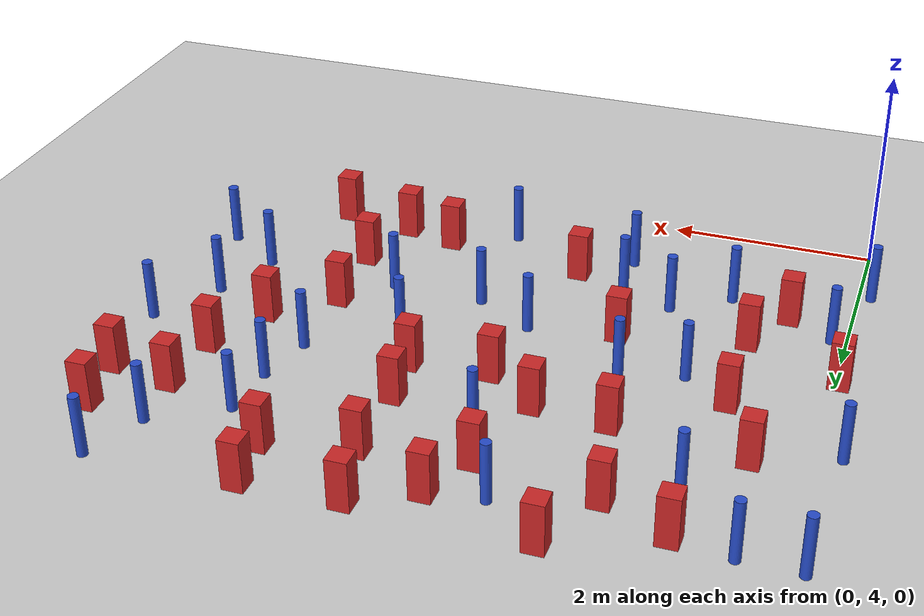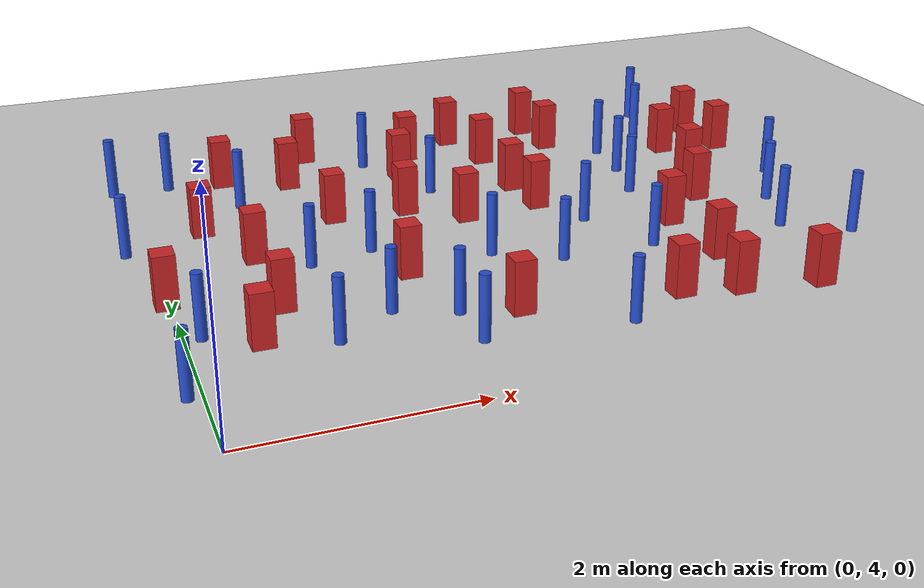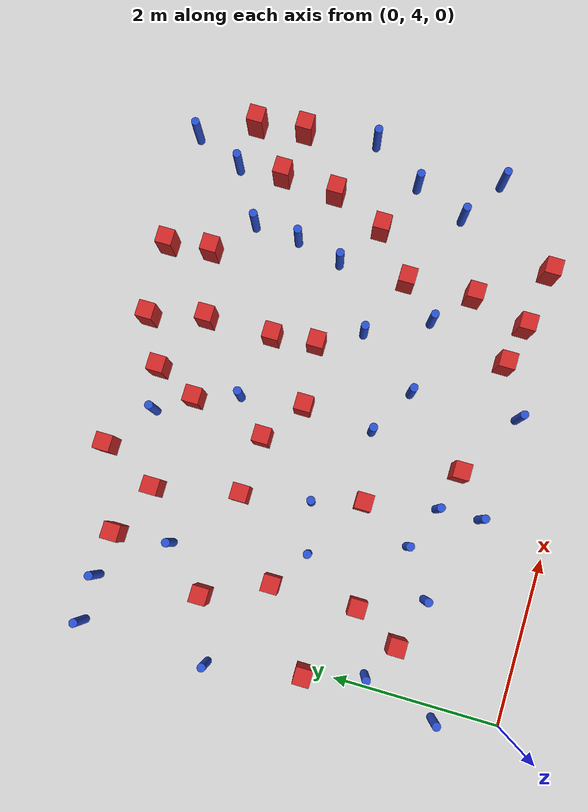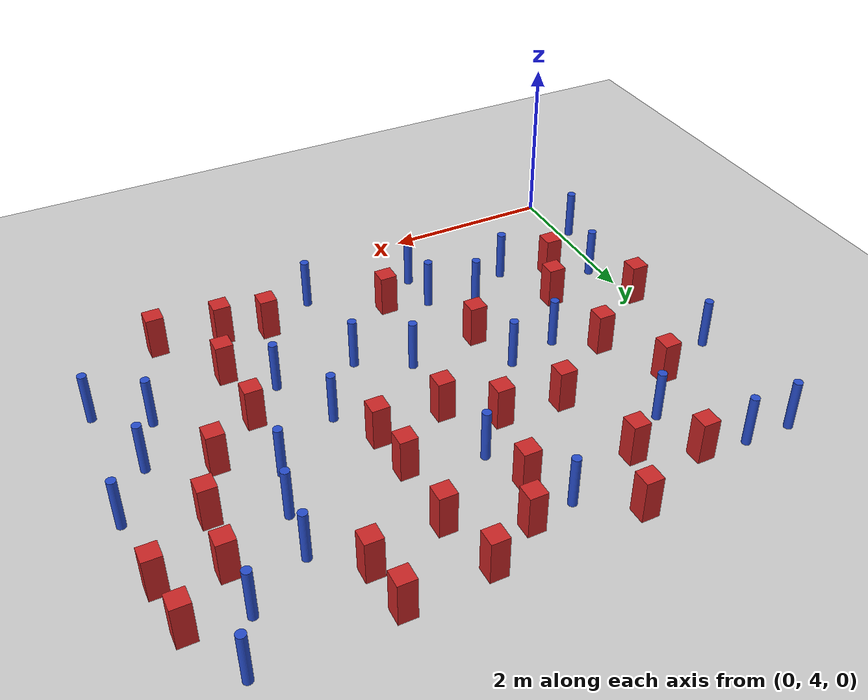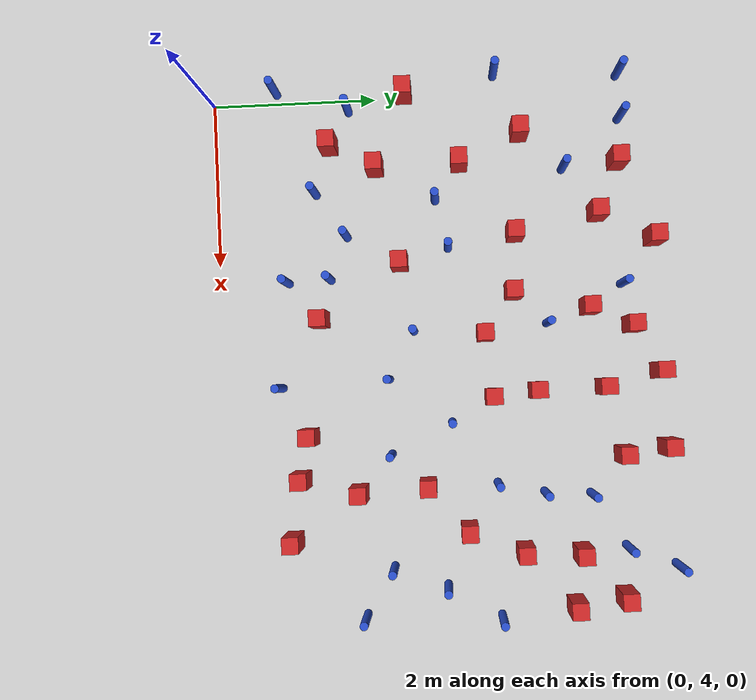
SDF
<sdf version="1.6">
 <world name="default">
  <model name="ground_plane">
   <static>1</static>
   <link name="link">
    <collision name="collision">
     <geometry><plane><normal>0 0 1</normal><size>100 100</size></plane></geometry>
     <surface><friction><ode><mu>100</mu><mu2>50</mu2></ode></friction></surface>
    </collision>
    <visual name="visual">
     <cast_shadows>0</cast_shadows>
     <geometry><plane><normal>0 0 1</normal><size>100 100</size></plane></geometry>
     <material>
      <ambient>1.0 1.0 1.0 1.0</ambient>
      <diffuse>0.8 0.8 0.8 1.0</diffuse>
      <specular>0.01 0.01 0.01 1.000000</specular>
     </material>
    </visual>
   </link>
  </model>
  <model name="pole_obstacle0">
   <static>true</static>
   <pose>5.99755645188 6.63738708719 7.38925637345e-09 -8.47170692796e-08 1.24976764786e-08 -1.74513093032e-07</pose>
   <link name="link">
    <pose>0 0 0.3 0 -0 0</pose>
    <inertial>
     <mass>1</mass>
     <inertia><ixx>0.145833</ixx><ixy>0</ixy><ixz>0</ixz><iyy>0.145833</iyy><iyz>0</iyz><izz>0.125</izz></inertia>
    </inertial>
    <collision name="collision">
     <geometry><cylinder><radius>0.05</radius><length>.6</length></cylinder></geometry>
    </collision>
    <visual name="visual">
     <geometry><cylinder><radius>0.05</radius><length>.6</length></cylinder></geometry>
     <material>
      <script><name>Gazebo/Blue</name><uri>file://media/materials/scripts/gazebo.material</uri></script>
     </material>
    </visual>
   </link>
  </model>
  <model name="pole_obstacle5">
   <static>true</static>
   <pose>2.2489243772 4.84507319505 7.38925637345e-09 -8.47170692798e-08 1.24976765033e-08 -1.74513093019e-07</pose>
   <link name="link">
    <pose>0 0 0.3 0 -0 0</pose>
    <inertial>
     <mass>1</mass>
     <inertia><ixx>0.145833</ixx><ixy>0</ixy><ixz>0</ixz><iyy>0.145833</iyy><iyz>0</iyz><izz>0.125</izz></inertia>
    </inertial>
    <collision name="collision">
     <geometry><cylinder><radius>0.05</radius><length>.6</length></cylinder></geometry>
    </collision>
    <visual name="visual">
     <geometry><cylinder><radius>0.05</radius><length>.6</length></cylinder></geometry>
     <material>
      <script><name>Gazebo/Blue</name><uri>file://media/materials/scripts/gazebo.material</uri></script>
     </material>
    </visual>
   </link>
  </model>
  <model name="square_post_obstacle11">
   <static>true</static>
   <pose>0.856327148266 6.99658887963 1.91545236811e-07 -7.35059704564e-06 1.12565212e-07 2.39332434364e-05</pose>
   <link name="link">
    <pose>0 0 0.25 0 -0 0</pose>
    <inertial>
     <mass>100</mass>
     <inertia>
      <ixx>0.166667</ixx>
      <ixy>0</ixy>
      <ixz>0</ixz>
      <iyy>0.166667</iyy>
      <iyz>0</iyz>
      <izz>0.166667</izz>
     </inertia>
    </inertial>
    <collision name="collision"><geometry><box><size>.2 .2 .5</size></box></geometry></collision>
    <visual name="visual">
     <geometry><box><size>.2 .2 .5</size></box></geometry>
     <material>
      <script><name>Gazebo/Red</name><uri>file://media/materials/scripts/gazebo.material</uri></script>
     </material>
    </visual>
   </link>
  </model>
  <model name="pole_obstacle8">
   <static>true</static>
   <pose>3.53030081762 4.71981835771 7.38925637345e-09 -8.47170692798e-08 1.24976765033e-08 -1.74513093019e-07</pose>
   <link name="link">
    <pose>0 0 0.3 0 -0 0</pose>
    <inertial>
     <mass>1</mass>
     <inertia><ixx>0.145833</ixx><ixy>0</ixy><ixz>0</ixz><iyy>0.145833</iyy><iyz>0</iyz><izz>0.125</izz></inertia>
    </inertial>
    <collision name="collision">
     <geometry><cylinder><radius>0.05</radius><length>.6</length></cylinder></geometry>
    </collision>
    <visual name="visual">
     <geometry><cylinder><radius>0.05</radius><length>.6</length></cylinder></geometry>
     <material>
      <script><name>Gazebo/Blue</name><uri>file://media/materials/scripts/gazebo.material</uri></script>
     </material>
    </visual>
   </link>
  </model>
  <model name="square_post_obstacle22">
   <static>true</static>
   <pose>-0.0327427874717 6.35556425959 1.91545236811e-07 -7.35059704564e-06 1.12565212e-07 2.39332434364e-05</pose>
   <link name="link">
    <pose>0 0 0.25 0 -0 0</pose>
    <inertial>
     <mass>100</mass>
     <inertia>
      <ixx>0.166667</ixx>
      <ixy>0</ixy>
      <ixz>0</ixz>
      <iyy>0.166667</iyy>
      <iyz>0</iyz>
      <izz>0.166667</izz>
     </inertia>
    </inertial>
    <collision name="collision"><geometry><box><size>.2 .2 .5</size></box></geometry></collision>
    <visual name="visual">
     <geometry><box><size>.2 .2 .5</size></box></geometry>
     <material>
      <script><name>Gazebo/Red</name><uri>file://media/materials/scripts/gazebo.material</uri></script>
     </material>
    </visual>
   </link>
  </model>
  <model name="pole_obstacle21">
   <static>true</static>
   <pose>2.43462324083 8.92595893079 7.38925637345e-09 -8.47170692793e-08 1.24976764408e-08 -1.74513093041e-07</pose>
   <link name="link">
    <pose>0 0 0.3 0 -0 0</pose>
    <inertial>
     <mass>1</mass>
     <inertia><ixx>0.145833</ixx><ixy>0</ixy><ixz>0</ixz><iyy>0.145833</iyy><iyz>0</iyz><izz>0.125</izz></inertia>
    </inertial>
    <collision name="collision">
     <geometry><cylinder><radius>0.05</radius><length>.6</length></cylinder></geometry>
    </collision>
    <visual name="visual">
     <geometry><cylinder><radius>0.05</radius><length>.6</length></cylinder></geometry>
     <material>
      <script><name>Gazebo/Blue</name><uri>file://media/materials/scripts/gazebo.material</uri></script>
     </material>
    </visual>
   </link>
  </model>
  <model name="square_post_obstacle33">
   <static>true</static>
   <pose>5.6651623324 8.2715726043 1.91545236811e-07 -7.35059704564e-06 1.12565212e-07 2.39332434364e-05</pose>
   <link name="link">
    <pose>0 0 0.25 0 -0 0</pose>
    <inertial>
     <mass>100</mass>
     <inertia>
      <ixx>0.166667</ixx>
      <ixy>0</ixy>
      <ixz>0</ixz>
      <iyy>0.166667</iyy>
      <iyz>0</iyz>
      <izz>0.166667</izz>
     </inertia>
    </inertial>
    <collision name="collision"><geometry><box><size>.2 .2 .5</size></box></geometry></collision>
    <visual name="visual">
     <geometry><box><size>.2 .2 .5</size></box></geometry>
     <material>
      <script><name>Gazebo/Red</name><uri>file://media/materials/scripts/gazebo.material</uri></script>
     </material>
    </visual>
   </link>
  </model>
  <model name="pole_obstacle31">
   <static>true</static>
   <pose>2.8780213015 7.98847032559 7.38925637345e-09 -8.47170692799e-08 1.24976765031e-08 -1.7451309302e-07</pose>
   <link name="link">
    <pose>0 0 0.3 0 -0 0</pose>
    <inertial>
     <mass>1</mass>
     <inertia><ixx>0.145833</ixx><ixy>0</ixy><ixz>0</ixz><iyy>0.145833</iyy><iyz>0</iyz><izz>0.125</izz></inertia>
    </inertial>
    <collision name="collision">
     <geometry><cylinder><radius>0.05</radius><length>.6</length></cylinder></geometry>
    </collision>
    <visual name="visual">
     <geometry><cylinder><radius>0.05</radius><length>.6</length></cylinder></geometry>
     <material>
      <script><name>Gazebo/Blue</name><uri>file://media/materials/scripts/gazebo.material</uri></script>
     </material>
    </visual>
   </link>
  </model>
  <model name="square_post_obstacle35">
   <static>true</static>
   <pose>4.79144498934 6.45345675793 1.91545236811e-07 -7.35059704564e-06 1.12565212e-07 2.39332434364e-05</pose>
   <link name="link">
    <pose>0 0 0.25 0 -0 0</pose>
    <inertial>
     <mass>100</mass>
     <inertia>
      <ixx>0.166667</ixx>
      <ixy>0</ixy>
      <ixz>0</ixz>
      <iyy>0.166667</iyy>
      <iyz>0</iyz>
      <izz>0.166667</izz>
     </inertia>
    </inertial>
    <collision name="collision"><geometry><box><size>.2 .2 .5</size></box></geometry></collision>
    <visual name="visual">
     <geometry><box><size>.2 .2 .5</size></box></geometry>
     <material>
      <script><name>Gazebo/Red</name><uri>file://media/materials/scripts/gazebo.material</uri></script>
     </material>
    </visual>
   </link>
  </model>
  <model name="pole_obstacle38">
   <static>true</static>
   <pose>2.90637058805 6.35592456789 7.38925637345e-09 -8.47170692798e-08 1.24976765033e-08 -1.74513093019e-07</pose>
   <link name="link">
    <pose>0 0 0.3 0 -0 0</pose>
    <inertial>
     <mass>1</mass>
     <inertia><ixx>0.145833</ixx><ixy>0</ixy><ixz>0</ixz><iyy>0.145833</iyy><iyz>0</iyz><izz>0.125</izz></inertia>
    </inertial>
    <collision name="collision">
     <geometry><cylinder><radius>0.05</radius><length>.6</length></cylinder></geometry>
    </collision>
    <visual name="visual">
     <geometry><cylinder><radius>0.05</radius><length>.6</length></cylinder></geometry>
     <material>
      <script><name>Gazebo/Blue</name><uri>file://media/materials/scripts/gazebo.material</uri></script>
     </material>
    </visual>
   </link>
  </model>
  <model name="square_post_obstacle42">
   <static>true</static>
   <pose>1.76039730953 7.63891847881 1.91545236811e-07 -7.35059704564e-06 1.12565212e-07 2.39332434364e-05</pose>
   <link name="link">
    <pose>0 0 0.25 0 -0 0</pose>
    <inertial>
     <mass>100</mass>
     <inertia>
      <ixx>0.166667</ixx>
      <ixy>0</ixy>
      <ixz>0</ixz>
      <iyy>0.166667</iyy>
      <iyz>0</iyz>
      <izz>0.166667</izz>
     </inertia>
    </inertial>
    <collision name="collision"><geometry><box><size>.2 .2 .5</size></box></geometry></collision>
    <visual name="visual">
     <geometry><box><size>.2 .2 .5</size></box></geometry>
     <material>
      <script><name>Gazebo/Red</name><uri>file://media/materials/scripts/gazebo.material</uri></script>
     </material>
    </visual>
   </link>
  </model>
  <model name="square_post_obstacle50">
   <static>true</static>
   <pose>2.71956268527 5.22555508597 1.91545236811e-07 -7.35059704564e-06 1.12565212e-07 2.39332434364e-05</pose>
   <link name="link">
    <pose>0 0 0.25 0 -0 0</pose>
    <inertial>
     <mass>100</mass>
     <inertia>
      <ixx>0.166667</ixx>
      <ixy>0</ixy>
      <ixz>0</ixz>
      <iyy>0.166667</iyy>
      <iyz>0</iyz>
      <izz>0.166667</izz>
     </inertia>
    </inertial>
    <collision name="collision"><geometry><box><size>.2 .2 .5</size></box></geometry></collision>
    <visual name="visual">
     <geometry><box><size>.2 .2 .5</size></box></geometry>
     <material>
      <script><name>Gazebo/Red</name><uri>file://media/materials/scripts/gazebo.material</uri></script>
     </material>
    </visual>
   </link>
  </model>
  <model name="square_post_obstacle52">
   <static>true</static>
   <pose>0.871663667104 5.9669803458 1.91545236811e-07 -7.35059704564e-06 1.12565212e-07 2.39332434364e-05</pose>
   <link name="link">
    <pose>0 0 0.25 0 -0 0</pose>
    <inertial>
     <mass>100</mass>
     <inertia>
      <ixx>0.166667</ixx>
      <ixy>0</ixy>
      <ixz>0</ixz>
      <iyy>0.166667</iyy>
      <iyz>0</iyz>
      <izz>0.166667</izz>
     </inertia>
    </inertial>
    <collision name="collision"><geometry><box><size>.2 .2 .5</size></box></geometry></collision>
    <visual name="visual">
     <geometry><box><size>.2 .2 .5</size></box></geometry>
     <material>
      <script><name>Gazebo/Red</name><uri>file://media/materials/scripts/gazebo.material</uri></script>
     </material>
    </visual>
   </link>
  </model>
  <model name="square_post_obstacle55">
   <static>true</static>
   <pose>3.74349272994 7.28651393045 1.91545236811e-07 -7.35059704564e-06 1.12565212e-07 2.39332434364e-05</pose>
   <link name="link">
    <pose>0 0 0.25 0 -0 0</pose>
    <inertial>
     <mass>100</mass>
     <inertia>
      <ixx>0.166667</ixx>
      <ixy>0</ixy>
      <ixz>0</ixz>
      <iyy>0.166667</iyy>
      <iyz>0</iyz>
      <izz>0.166667</izz>
     </inertia>
    </inertial>
    <collision name="collision"><geometry><box><size>.2 .2 .5</size></box></geometry></collision>
    <visual name="visual">
     <geometry><box><size>.2 .2 .5</size></box></geometry>
     <material>
      <script><name>Gazebo/Red</name><uri>file://media/materials/scripts/gazebo.material</uri></script>
     </material>
    </visual>
   </link>
  </model>
  <model name="pole_obstacle56">
   <static>true</static>
   <pose>6.31050475551 5.64583340317 7.38925637345e-09 -8.47170692796e-08 1.24976764786e-08 -1.74513093032e-07</pose>
   <link name="link">
    <pose>0 0 0.3 0 -0 0</pose>
    <inertial>
     <mass>1</mass>
     <inertia><ixx>0.145833</ixx><ixy>0</ixy><ixz>0</ixz><iyy>0.145833</iyy><iyz>0</iyz><izz>0.125</izz></inertia>
    </inertial>
    <collision name="collision">
     <geometry><cylinder><radius>0.05</radius><length>.6</length></cylinder></geometry>
    </collision>
    <visual name="visual">
     <geometry><cylinder><radius>0.05</radius><length>.6</length></cylinder></geometry>
     <material>
      <script><name>Gazebo/Blue</name><uri>file://media/materials/scripts/gazebo.material</uri></script>
     </material>
    </visual>
   </link>
  </model>
  <model name="square_post_obstacle64">
   <static>true</static>
   <pose>2.47729177372 7.58631149283 1.91545236811e-07 -7.35059704564e-06 1.12565212e-07 2.39332434364e-05</pose>
   <link name="link">
    <pose>0 0 0.25 0 -0 0</pose>
    <inertial>
     <mass>100</mass>
     <inertia>
      <ixx>0.166667</ixx>
      <ixy>0</ixy>
      <ixz>0</ixz>
      <iyy>0.166667</iyy>
      <iyz>0</iyz>
      <izz>0.166667</izz>
     </inertia>
    </inertial>
    <collision name="collision"><geometry><box><size>.2 .2 .5</size></box></geometry></collision>
    <visual name="visual">
     <geometry><box><size>.2 .2 .5</size></box></geometry>
     <material>
      <script><name>Gazebo/Red</name><uri>file://media/materials/scripts/gazebo.material</uri></script>
     </material>
    </visual>
   </link>
  </model>
  <model name="pole_obstacle64">
   <static>true</static>
   <pose>-0.11627415921 4.77974275067 7.38925637345e-09 -8.47170692798e-08 1.2497676502e-08 -1.7451309302e-07</pose>
   <link name="link">
    <pose>0 0 0.3 0 -0 0</pose>
    <inertial>
     <mass>1</mass>
     <inertia><ixx>0.145833</ixx><ixy>0</ixy><ixz>0</ixz><iyy>0.145833</iyy><iyz>0</iyz><izz>0.125</izz></inertia>
    </inertial>
    <collision name="collision">
     <geometry><cylinder><radius>0.05</radius><length>.6</length></cylinder></geometry>
    </collision>
    <visual name="visual">
     <geometry><cylinder><radius>0.05</radius><length>.6</length></cylinder></geometry>
     <material>
      <script><name>Gazebo/Blue</name><uri>file://media/materials/scripts/gazebo.material</uri></script>
     </material>
    </visual>
   </link>
  </model>
  <model name="pole_obstacle65">
   <static>true</static>
   <pose>4.96928665343 8.42317923804 7.38925637345e-09 -8.471706928e-08 1.24976765081e-08 -1.74513093015e-07</pose>
   <link name="link">
    <pose>0 0 0.3 0 -0 0</pose>
    <inertial>
     <mass>1</mass>
     <inertia><ixx>0.145833</ixx><ixy>0</ixy><ixz>0</ixz><iyy>0.145833</iyy><iyz>0</iyz><izz>0.125</izz></inertia>
    </inertial>
    <collision name="collision">
     <geometry><cylinder><radius>0.05</radius><length>.6</length></cylinder></geometry>
    </collision>
    <visual name="visual">
     <geometry><cylinder><radius>0.05</radius><length>.6</length></cylinder></geometry>
     <material>
      <script><name>Gazebo/Blue</name><uri>file://media/materials/scripts/gazebo.material</uri></script>
     </material>
    </visual>
   </link>
  </model>
  <model name="pole_obstacle66">
   <static>true</static>
   <pose>3.48145555141 6.03117012768 7.38925637345e-09 -8.47170692798e-08 1.24976765033e-08 -1.74513093019e-07</pose>
   <link name="link">
    <pose>0 0 0.3 0 -0 0</pose>
    <inertial>
     <mass>1</mass>
     <inertia><ixx>0.145833</ixx><ixy>0</ixy><ixz>0</ixz><iyy>0.145833</iyy><iyz>0</iyz><izz>0.125</izz></inertia>
    </inertial>
    <collision name="collision">
     <geometry><cylinder><radius>0.05</radius><length>.6</length></cylinder></geometry>
    </collision>
    <visual name="visual">
     <geometry><cylinder><radius>0.05</radius><length>.6</length></cylinder></geometry>
     <material>
      <script><name>Gazebo/Blue</name><uri>file://media/materials/scripts/gazebo.material</uri></script>
     </material>
    </visual>
   </link>
  </model>
  <model name="square_post_obstacle70">
   <static>true</static>
   <pose>6.21128463983 8.76555066621 1.91545236811e-07 -7.35059704564e-06 1.12565212e-07 2.39332434364e-05</pose>
   <link name="link">
    <pose>0 0 0.25 0 -0 0</pose>
    <inertial>
     <mass>100</mass>
     <inertia>
      <ixx>0.166667</ixx>
      <ixy>0</ixy>
      <ixz>0</ixz>
      <iyy>0.166667</iyy>
      <iyz>0</iyz>
      <izz>0.166667</izz>
     </inertia>
    </inertial>
    <collision name="collision"><geometry><box><size>.2 .2 .5</size></box></geometry></collision>
    <visual name="visual">
     <geometry><box><size>.2 .2 .5</size></box></geometry>
     <material>
      <script><name>Gazebo/Red</name><uri>file://media/materials/scripts/gazebo.material</uri></script>
     </material>
    </visual>
   </link>
  </model>
  <model name="pole_obstacle72">
   <static>true</static>
   <pose>0.981182885316 8.26852996969 7.38925637345e-09 -8.47170692796e-08 1.24976764734e-08 -1.74513093035e-07</pose>
   <link name="link">
    <pose>0 0 0.3 0 -0 0</pose>
    <inertial>
     <mass>1</mass>
     <inertia><ixx>0.145833</ixx><ixy>0</ixy><ixz>0</ixz><iyy>0.145833</iyy><iyz>0</iyz><izz>0.125</izz></inertia>
    </inertial>
    <collision name="collision">
     <geometry><cylinder><radius>0.05</radius><length>.6</length></cylinder></geometry>
    </collision>
    <visual name="visual">
     <geometry><cylinder><radius>0.05</radius><length>.6</length></cylinder></geometry>
     <material>
      <script><name>Gazebo/Blue</name><uri>file://media/materials/scripts/gazebo.material</uri></script>
     </material>
    </visual>
   </link>
  </model>
  <model name="pole_obstacle74">
   <static>true</static>
   <pose>5.86839361911 9.41769860707 7.38925637345e-09 -8.471706928e-08 1.24976765081e-08 -1.74513093015e-07</pose>
   <link name="link">
    <pose>0 0 0.3 0 -0 0</pose>
    <inertial>
     <mass>1</mass>
     <inertia><ixx>0.145833</ixx><ixy>0</ixy><ixz>0</ixz><iyy>0.145833</iyy><iyz>0</iyz><izz>0.125</izz></inertia>
    </inertial>
    <collision name="collision">
     <geometry><cylinder><radius>0.05</radius><length>.6</length></cylinder></geometry>
    </collision>
    <visual name="visual">
     <geometry><cylinder><radius>0.05</radius><length>.6</length></cylinder></geometry>
     <material>
      <script><name>Gazebo/Blue</name><uri>file://media/materials/scripts/gazebo.material</uri></script>
     </material>
    </visual>
   </link>
  </model>
  <model name="pole_obstacle77">
   <static>true</static>
   <pose>5.74904492945 5.99995068693 7.38925637345e-09 -8.47170692796e-08 1.24976764786e-08 -1.74513093032e-07</pose>
   <link name="link">
    <pose>0 0 0.3 0 -0 0</pose>
    <inertial>
     <mass>1</mass>
     <inertia><ixx>0.145833</ixx><ixy>0</ixy><ixz>0</ixz><iyy>0.145833</iyy><iyz>0</iyz><izz>0.125</izz></inertia>
    </inertial>
    <collision name="collision">
     <geometry><cylinder><radius>0.05</radius><length>.6</length></cylinder></geometry>
    </collision>
    <visual name="visual">
     <geometry><cylinder><radius>0.05</radius><length>.6</length></cylinder></geometry>
     <material>
      <script><name>Gazebo/Blue</name><uri>file://media/materials/scripts/gazebo.material</uri></script>
     </material>
    </visual>
   </link>
  </model>
  <model name="square_post_obstacle78">
   <static>true</static>
   <pose>5.62128902166 7.58069230801 1.91545236811e-07 -7.35059704564e-06 1.12565212e-07 2.39332434364e-05</pose>
   <link name="link">
    <pose>0 0 0.25 0 -0 0</pose>
    <inertial>
     <mass>100</mass>
     <inertia>
      <ixx>0.166667</ixx>
      <ixy>0</ixy>
      <ixz>0</ixz>
      <iyy>0.166667</iyy>
      <iyz>0</iyz>
      <izz>0.166667</izz>
     </inertia>
    </inertial>
    <collision name="collision"><geometry><box><size>.2 .2 .5</size></box></geometry></collision>
    <visual name="visual">
     <geometry><box><size>.2 .2 .5</size></box></geometry>
     <material>
      <script><name>Gazebo/Red</name><uri>file://media/materials/scripts/gazebo.material</uri></script>
     </material>
    </visual>
   </link>
  </model>
  <model name="pole_obstacle81">
   <static>true</static>
   <pose>-0.229649474006 7.47274732644 7.38925637345e-09 -8.47170692799e-08 1.2497676507e-08 -1.74513093018e-07</pose>
   <link name="link">
    <pose>0 0 0.3 0 -0 0</pose>
    <inertial>
     <mass>1</mass>
     <inertia><ixx>0.145833</ixx><ixy>0</ixy><ixz>0</ixz><iyy>0.145833</iyy><iyz>0</iyz><izz>0.125</izz></inertia>
    </inertial>
    <collision name="collision">
     <geometry><cylinder><radius>0.05</radius><length>.6</length></cylinder></geometry>
    </collision>
    <visual name="visual">
     <geometry><cylinder><radius>0.05</radius><length>.6</length></cylinder></geometry>
     <material>
      <script><name>Gazebo/Blue</name><uri>file://media/materials/scripts/gazebo.material</uri></script>
     </material>
    </visual>
   </link>
  </model>
  <model name="pole_obstacle92">
   <static>true</static>
   <pose>1.89892607171 6.81845488688 7.38925637345e-09 -8.47170692799e-08 1.24976765033e-08 -1.74513093018e-07</pose>
   <link name="link">
    <pose>0 0 0.3 0 -0 0</pose>
    <inertial>
     <mass>1</mass>
     <inertia><ixx>0.145833</ixx><ixy>0</ixy><ixz>0</ixz><iyy>0.145833</iyy><iyz>0</iyz><izz>0.125</izz></inertia>
    </inertial>
    <collision name="collision">
     <geometry><cylinder><radius>0.05</radius><length>.6</length></cylinder></geometry>
    </collision>
    <visual name="visual">
     <geometry><cylinder><radius>0.05</radius><length>.6</length></cylinder></geometry>
     <material>
      <script><name>Gazebo/Blue</name><uri>file://media/materials/scripts/gazebo.material</uri></script>
     </material>
    </visual>
   </link>
  </model>
  <model name="square_post_obstacle86">
   <static>true</static>
   <pose>5.34016076921 6.9235717256 1.91545236811e-07 -7.35059704564e-06 1.12565212e-07 2.39332434364e-05</pose>
   <link name="link">
    <pose>0 0 0.25 0 -0 0</pose>
    <inertial>
     <mass>100</mass>
     <inertia>
      <ixx>0.166667</ixx>
      <ixy>0</ixy>
      <ixz>0</ixz>
      <iyy>0.166667</iyy>
      <iyz>0</iyz>
      <izz>0.166667</izz>
     </inertia>
    </inertial>
    <collision name="collision"><geometry><box><size>.2 .2 .5</size></box></geometry></collision>
    <visual name="visual">
     <geometry><box><size>.2 .2 .5</size></box></geometry>
     <material>
      <script><name>Gazebo/Red</name><uri>file://media/materials/scripts/gazebo.material</uri></script>
     </material>
    </visual>
   </link>
  </model>
  <model name="pole_obstacle97">
   <static>true</static>
   <pose>2.22989353165 5.36313278845 7.38925637345e-09 -8.47170692798e-08 1.24976765033e-08 -1.74513093019e-07</pose>
   <link name="link">
    <pose>0 0 0.3 0 -0 0</pose>
    <inertial>
     <mass>1</mass>
     <inertia><ixx>0.145833</ixx><ixy>0</ixy><ixz>0</ixz><iyy>0.145833</iyy><iyz>0</iyz><izz>0.125</izz></inertia>
    </inertial>
    <collision name="collision">
     <geometry><cylinder><radius>0.05</radius><length>.6</length></cylinder></geometry>
    </collision>
    <visual name="visual">
     <geometry><cylinder><radius>0.05</radius><length>.6</length></cylinder></geometry>
     <material>
      <script><name>Gazebo/Blue</name><uri>file://media/materials/scripts/gazebo.material</uri></script>
     </material>
    </visual>
   </link>
  </model>
  <model name="pole_obstacle105">
   <static>true</static>
   <pose>6.39057079345 7.27377109398 7.38925637345e-09 -8.47170692796e-08 1.24976764786e-08 -1.74513093032e-07</pose>
   <link name="link">
    <pose>0 0 0.3 0 -0 0</pose>
    <inertial>
     <mass>1</mass>
     <inertia><ixx>0.145833</ixx><ixy>0</ixy><ixz>0</ixz><iyy>0.145833</iyy><iyz>0</iyz><izz>0.125</izz></inertia>
    </inertial>
    <collision name="collision">
     <geometry><cylinder><radius>0.05</radius><length>.6</length></cylinder></geometry>
    </collision>
    <visual name="visual">
     <geometry><cylinder><radius>0.05</radius><length>.6</length></cylinder></geometry>
     <material>
      <script><name>Gazebo/Blue</name><uri>file://media/materials/scripts/gazebo.material</uri></script>
     </material>
    </visual>
   </link>
  </model>
  <model name="pole_obstacle108">
   <static>true</static>
   <pose>0.383739081918 8.99588017691 7.38925637345e-09 -8.47170692796e-08 1.24976764724e-08 -1.74513093036e-07</pose>
   <link name="link">
    <pose>0 0 0.3 0 -0 0</pose>
    <inertial>
     <mass>1</mass>
     <inertia><ixx>0.145833</ixx><ixy>0</ixy><ixz>0</ixz><iyy>0.145833</iyy><iyz>0</iyz><izz>0.125</izz></inertia>
    </inertial>
    <collision name="collision">
     <geometry><cylinder><radius>0.05</radius><length>.6</length></cylinder></geometry>
    </collision>
    <visual name="visual">
     <geometry><cylinder><radius>0.05</radius><length>.6</length></cylinder></geometry>
     <material>
      <script><name>Gazebo/Blue</name><uri>file://media/materials/scripts/gazebo.material</uri></script>
     </material>
    </visual>
   </link>
  </model>
  <model name="pole_obstacle112">
   <static>true</static>
   <pose>0.142752068096 5.66250880578 7.38925637345e-09 -8.471706928e-08 1.24976765036e-08 -1.74513093019e-07</pose>
   <link name="link">
    <pose>0 0 0.3 0 -0 0</pose>
    <inertial>
     <mass>1</mass>
     <inertia><ixx>0.145833</ixx><ixy>0</ixy><ixz>0</ixz><iyy>0.145833</iyy><iyz>0</iyz><izz>0.125</izz></inertia>
    </inertial>
    <collision name="collision">
     <geometry><cylinder><radius>0.05</radius><length>.6</length></cylinder></geometry>
    </collision>
    <visual name="visual">
     <geometry><cylinder><radius>0.05</radius><length>.6</length></cylinder></geometry>
     <material>
      <script><name>Gazebo/Blue</name><uri>file://media/materials/scripts/gazebo.material</uri></script>
     </material>
    </visual>
   </link>
  </model>
  <model name="pole_obstacle113">
   <static>true</static>
   <pose>4.79475426662 7.29764167727 7.38925637345e-09 -8.47170692796e-08 1.24976764786e-08 -1.74513093032e-07</pose>
   <link name="link">
    <pose>0 0 0.3 0 -0 0</pose>
    <inertial>
     <mass>1</mass>
     <inertia><ixx>0.145833</ixx><ixy>0</ixy><ixz>0</ixz><iyy>0.145833</iyy><iyz>0</iyz><izz>0.125</izz></inertia>
    </inertial>
    <collision name="collision">
     <geometry><cylinder><radius>0.05</radius><length>.6</length></cylinder></geometry>
    </collision>
    <visual name="visual">
     <geometry><cylinder><radius>0.05</radius><length>.6</length></cylinder></geometry>
     <material>
      <script><name>Gazebo/Blue</name><uri>file://media/materials/scripts/gazebo.material</uri></script>
     </material>
    </visual>
   </link>
  </model>
  <model name="square_post_obstacle102">
   <static>true</static>
   <pose>0.576923624208 5.41304058156 1.91545236811e-07 -7.35059704564e-06 1.12565212e-07 2.39332434364e-05</pose>
   <link name="link">
    <pose>0 0 0.25 0 -0 0</pose>
    <inertial>
     <mass>100</mass>
     <inertia>
      <ixx>0.166667</ixx>
      <ixy>0</ixy>
      <ixz>0</ixz>
      <iyy>0.166667</iyy>
      <iyz>0</iyz>
      <izz>0.166667</izz>
     </inertia>
    </inertial>
    <collision name="collision"><geometry><box><size>.2 .2 .5</size></box></geometry></collision>
    <visual name="visual">
     <geometry><box><size>.2 .2 .5</size></box></geometry>
     <material>
      <script><name>Gazebo/Red</name><uri>file://media/materials/scripts/gazebo.material</uri></script>
     </material>
    </visual>
   </link>
  </model>
  <model name="pole_obstacle116">
   <static>true</static>
   <pose>4.92853904354 7.86114689053 7.38925637345e-09 -8.47170692796e-08 1.24976764786e-08 -1.74513093032e-07</pose>
   <link name="link">
    <pose>0 0 0.3 0 -0 0</pose>
    <inertial>
     <mass>1</mass>
     <inertia><ixx>0.145833</ixx><ixy>0</ixy><ixz>0</ixz><iyy>0.145833</iyy><iyz>0</iyz><izz>0.125</izz></inertia>
    </inertial>
    <collision name="collision">
     <geometry><cylinder><radius>0.05</radius><length>.6</length></cylinder></geometry>
    </collision>
    <visual name="visual">
     <geometry><cylinder><radius>0.05</radius><length>.6</length></cylinder></geometry>
     <material>
      <script><name>Gazebo/Blue</name><uri>file://media/materials/scripts/gazebo.material</uri></script>
     </material>
    </visual>
   </link>
  </model>
  <model name="square_post_obstacle109">
   <static>true</static>
   <pose>1.88378879313 9.33576052809 1.91545236811e-07 -7.35059704564e-06 1.12565212e-07 2.39332434364e-05</pose>
   <link name="link">
    <pose>0 0 0.25 0 -0 0</pose>
    <inertial>
     <mass>100</mass>
     <inertia>
      <ixx>0.166667</ixx>
      <ixy>0</ixy>
      <ixz>0</ixz>
      <iyy>0.166667</iyy>
      <iyz>0</iyz>
      <izz>0.166667</izz>
     </inertia>
    </inertial>
    <collision name="collision"><geometry><box><size>.2 .2 .5</size></box></geometry></collision>
    <visual name="visual">
     <geometry><box><size>.2 .2 .5</size></box></geometry>
     <material>
      <script><name>Gazebo/Red</name><uri>file://media/materials/scripts/gazebo.material</uri></script>
     </material>
    </visual>
   </link>
  </model>
  <model name="square_post_obstacle111">
   <static>true</static>
   <pose>2.70292054728 8.50111142422 1.91545236811e-07 -7.35059704564e-06 1.12565212e-07 2.39332434364e-05</pose>
   <link name="link">
    <pose>0 0 0.25 0 -0 0</pose>
    <inertial>
     <mass>100</mass>
     <inertia>
      <ixx>0.166667</ixx>
      <ixy>0</ixy>
      <ixz>0</ixz>
      <iyy>0.166667</iyy>
      <iyz>0</iyz>
      <izz>0.166667</izz>
     </inertia>
    </inertial>
    <collision name="collision"><geometry><box><size>.2 .2 .5</size></box></geometry></collision>
    <visual name="visual">
     <geometry><box><size>.2 .2 .5</size></box></geometry>
     <material>
      <script><name>Gazebo/Red</name><uri>file://media/materials/scripts/gazebo.material</uri></script>
     </material>
    </visual>
   </link>
  </model>
  <model name="pole_obstacle126">
   <static>true</static>
   <pose>1.70874282014 5.58297980614 7.38925637345e-09 -8.47170692799e-08 1.24976765033e-08 -1.74513093018e-07</pose>
   <link name="link">
    <pose>0 0 0.3 0 -0 0</pose>
    <inertial>
     <mass>1</mass>
     <inertia><ixx>0.145833</ixx><ixy>0</ixy><ixz>0</ixz><iyy>0.145833</iyy><iyz>0</iyz><izz>0.125</izz></inertia>
    </inertial>
    <collision name="collision">
     <geometry><cylinder><radius>0.05</radius><length>.6</length></cylinder></geometry>
    </collision>
    <visual name="visual">
     <geometry><cylinder><radius>0.05</radius><length>.6</length></cylinder></geometry>
     <material>
      <script><name>Gazebo/Blue</name><uri>file://media/materials/scripts/gazebo.material</uri></script>
     </material>
    </visual>
   </link>
  </model>
  <model name="pole_obstacle135">
   <static>true</static>
   <pose>4.03400162331 6.77562030227 7.38925637345e-09 -8.47170692796e-08 1.24976764793e-08 -1.74513093032e-07</pose>
   <link name="link">
    <pose>0 0 0.3 0 -0 0</pose>
    <inertial>
     <mass>1</mass>
     <inertia><ixx>0.145833</ixx><ixy>0</ixy><ixz>0</ixz><iyy>0.145833</iyy><iyz>0</iyz><izz>0.125</izz></inertia>
    </inertial>
    <collision name="collision">
     <geometry><cylinder><radius>0.05</radius><length>.6</length></cylinder></geometry>
    </collision>
    <visual name="visual">
     <geometry><cylinder><radius>0.05</radius><length>.6</length></cylinder></geometry>
     <material>
      <script><name>Gazebo/Blue</name><uri>file://media/materials/scripts/gazebo.material</uri></script>
     </material>
    </visual>
   </link>
  </model>
  <model name="square_post_obstacle116">
   <static>true</static>
   <pose>5.37374726148 4.80829881207 1.91545236811e-07 -7.35059704564e-06 1.12565212e-07 2.39332434364e-05</pose>
   <link name="link">
    <pose>0 0 0.25 0 -0 0</pose>
    <inertial>
     <mass>100</mass>
     <inertia>
      <ixx>0.166667</ixx>
      <ixy>0</ixy>
      <ixz>0</ixz>
      <iyy>0.166667</iyy>
      <iyz>0</iyz>
      <izz>0.166667</izz>
     </inertia>
    </inertial>
    <collision name="collision"><geometry><box><size>.2 .2 .5</size></box></geometry></collision>
    <visual name="visual">
     <geometry><box><size>.2 .2 .5</size></box></geometry>
     <material>
      <script><name>Gazebo/Red</name><uri>file://media/materials/scripts/gazebo.material</uri></script>
     </material>
    </visual>
   </link>
  </model>
  <model name="square_post_obstacle129">
   <static>true</static>
   <pose>2.94358524326 9.01727191028 1.91545236811e-07 -7.35059704564e-06 1.12565212e-07 2.39332434364e-05</pose>
   <link name="link">
    <pose>0 0 0.25 0 -0 0</pose>
    <inertial>
     <mass>100</mass>
     <inertia>
      <ixx>0.166667</ixx>
      <ixy>0</ixy>
      <ixz>0</ixz>
      <iyy>0.166667</iyy>
      <iyz>0</iyz>
      <izz>0.166667</izz>
     </inertia>
    </inertial>
    <collision name="collision"><geometry><box><size>.2 .2 .5</size></box></geometry></collision>
    <visual name="visual">
     <geometry><box><size>.2 .2 .5</size></box></geometry>
     <material>
      <script><name>Gazebo/Red</name><uri>file://media/materials/scripts/gazebo.material</uri></script>
     </material>
    </visual>
   </link>
  </model>
  <model name="square_post_obstacle131">
   <static>true</static>
   <pose>4.50656363587 8.83776898036 1.91545236811e-07 -7.35059704564e-06 1.12565212e-07 2.39332434364e-05</pose>
   <link name="link">
    <pose>0 0 0.25 0 -0 0</pose>
    <inertial>
     <mass>100</mass>
     <inertia>
      <ixx>0.166667</ixx>
      <ixy>0</ixy>
      <ixz>0</ixz>
      <iyy>0.166667</iyy>
      <iyz>0</iyz>
      <izz>0.166667</izz>
     </inertia>
    </inertial>
    <collision name="collision"><geometry><box><size>.2 .2 .5</size></box></geometry></collision>
    <visual name="visual">
     <geometry><box><size>.2 .2 .5</size></box></geometry>
     <material>
      <script><name>Gazebo/Red</name><uri>file://media/materials/scripts/gazebo.material</uri></script>
     </material>
    </visual>
   </link>
  </model>
  <model name="square_post_obstacle141">
   <static>true</static>
   <pose>2.06073555695 6.22179712234 1.91545236811e-07 -7.35059704564e-06 1.12565212e-07 2.39332434364e-05</pose>
   <link name="link">
    <pose>0 0 0.25 0 -0 0</pose>
    <inertial>
     <mass>100</mass>
     <inertia>
      <ixx>0.166667</ixx>
      <ixy>0</ixy>
      <ixz>0</ixz>
      <iyy>0.166667</iyy>
      <iyz>0</iyz>
      <izz>0.166667</izz>
     </inertia>
    </inertial>
    <collision name="collision"><geometry><box><size>.2 .2 .5</size></box></geometry></collision>
    <visual name="visual">
     <geometry><box><size>.2 .2 .5</size></box></geometry>
     <material>
      <script><name>Gazebo/Red</name><uri>file://media/materials/scripts/gazebo.material</uri></script>
     </material>
    </visual>
   </link>
  </model>
  <model name="square_post_obstacle142">
   <static>true</static>
   <pose>3.51799560791 9.33027974555 1.91545236811e-07 -7.35059704564e-06 1.12565212e-07 2.39332434364e-05</pose>
   <link name="link">
    <pose>0 0 0.25 0 -0 0</pose>
    <inertial>
     <mass>100</mass>
     <inertia>
      <ixx>0.166667</ixx>
      <ixy>0</ixy>
      <ixz>0</ixz>
      <iyy>0.166667</iyy>
      <iyz>0</iyz>
      <izz>0.166667</izz>
     </inertia>
    </inertial>
    <collision name="collision"><geometry><box><size>.2 .2 .5</size></box></geometry></collision>
    <visual name="visual">
     <geometry><box><size>.2 .2 .5</size></box></geometry>
     <material>
      <script><name>Gazebo/Red</name><uri>file://media/materials/scripts/gazebo.material</uri></script>
     </material>
    </visual>
   </link>
  </model>
  <model name="square_post_obstacle143">
   <static>true</static>
   <pose>3.68238029096 8.64796284473 1.91545236811e-07 -7.35059704564e-06 1.12565212e-07 2.39332434364e-05</pose>
   <link name="link">
    <pose>0 0 0.25 0 -0 0</pose>
    <inertial>
     <mass>100</mass>
     <inertia>
      <ixx>0.166667</ixx>
      <ixy>0</ixy>
      <ixz>0</ixz>
      <iyy>0.166667</iyy>
      <iyz>0</iyz>
      <izz>0.166667</izz>
     </inertia>
    </inertial>
    <collision name="collision"><geometry><box><size>.2 .2 .5</size></box></geometry></collision>
    <visual name="visual">
     <geometry><box><size>.2 .2 .5</size></box></geometry>
     <material>
      <script><name>Gazebo/Red</name><uri>file://media/materials/scripts/gazebo.material</uri></script>
     </material>
    </visual>
   </link>
  </model>
  <model name="square_post_obstacle153">
   <static>true</static>
   <pose>6.29069044161 8.16707394189 1.91545236811e-07 -7.35059704564e-06 1.12565212e-07 2.39332434364e-05</pose>
   <link name="link">
    <pose>0 0 0.25 0 -0 0</pose>
    <inertial>
     <mass>100</mass>
     <inertia>
      <ixx>0.166667</ixx>
      <ixy>0</ixy>
      <ixz>0</ixz>
      <iyy>0.166667</iyy>
      <iyz>0</iyz>
      <izz>0.166667</izz>
     </inertia>
    </inertial>
    <collision name="collision"><geometry><box><size>.2 .2 .5</size></box></geometry></collision>
    <visual name="visual">
     <geometry><box><size>.2 .2 .5</size></box></geometry>
     <material>
      <script><name>Gazebo/Red</name><uri>file://media/materials/scripts/gazebo.material</uri></script>
     </material>
    </visual>
   </link>
  </model>
  <model name="square_post_obstacle154">
   <static>true</static>
   <pose>2.97252602302 7.21872620431 1.91545236811e-07 -7.35059704564e-06 1.12565212e-07 2.39332434364e-05</pose>
   <link name="link">
    <pose>0 0 0.25 0 -0 0</pose>
    <inertial>
     <mass>100</mass>
     <inertia>
      <ixx>0.166667</ixx>
      <ixy>0</ixy>
      <ixz>0</ixz>
      <iyy>0.166667</iyy>
      <iyz>0</iyz>
      <izz>0.166667</izz>
     </inertia>
    </inertial>
    <collision name="collision"><geometry><box><size>.2 .2 .5</size></box></geometry></collision>
    <visual name="visual">
     <geometry><box><size>.2 .2 .5</size></box></geometry>
     <material>
      <script><name>Gazebo/Red</name><uri>file://media/materials/scripts/gazebo.material</uri></script>
     </material>
    </visual>
   </link>
  </model>
  <model name="pole_obstacle170">
   <static>true</static>
   <pose>4.39157322329 6.02539241851 7.38925637345e-09 -8.47170692796e-08 1.24976764786e-08 -1.74513093032e-07</pose>
   <link name="link">
    <pose>0 0 0.3 0 -0 0</pose>
    <inertial>
     <mass>1</mass>
     <inertia><ixx>0.145833</ixx><ixy>0</ixy><ixz>0</ixz><iyy>0.145833</iyy><iyz>0</iyz><izz>0.125</izz></inertia>
    </inertial>
    <collision name="collision">
     <geometry><cylinder><radius>0.05</radius><length>.6</length></cylinder></geometry>
    </collision>
    <visual name="visual">
     <geometry><cylinder><radius>0.05</radius><length>.6</length></cylinder></geometry>
     <material>
      <script><name>Gazebo/Blue</name><uri>file://media/materials/scripts/gazebo.material</uri></script>
     </material>
    </visual>
   </link>
  </model>
  <model name="pole_obstacle182">
   <static>true</static>
   <pose>1.30169317138 6.68612794993 7.38925637345e-09 -8.47170692799e-08 1.24976765033e-08 -1.74513093018e-07</pose>
   <link name="link">
    <pose>0 0 0.3 0 -0 0</pose>
    <inertial>
     <mass>1</mass>
     <inertia><ixx>0.145833</ixx><ixy>0</ixy><ixz>0</ixz><iyy>0.145833</iyy><iyz>0</iyz><izz>0.125</izz></inertia>
    </inertial>
    <collision name="collision">
     <geometry><cylinder><radius>0.05</radius><length>.6</length></cylinder></geometry>
    </collision>
    <visual name="visual">
     <geometry><cylinder><radius>0.05</radius><length>.6</length></cylinder></geometry>
     <material>
      <script><name>Gazebo/Blue</name><uri>file://media/materials/scripts/gazebo.material</uri></script>
     </material>
    </visual>
   </link>
  </model>
  <model name="pole_obstacle188">
   <static>true</static>
   <pose>-0.163447012789 9.00048239698 7.38925637345e-09 -8.47170692797e-08 1.249767648e-08 -1.74513093033e-07</pose>
   <link name="link">
    <pose>0 0 0.3 0 -0 0</pose>
    <inertial>
     <mass>1</mass>
     <inertia><ixx>0.145833</ixx><ixy>0</ixy><ixz>0</ixz><iyy>0.145833</iyy><iyz>0</iyz><izz>0.125</izz></inertia>
    </inertial>
    <collision name="collision">
     <geometry><cylinder><radius>0.05</radius><length>.6</length></cylinder></geometry>
    </collision>
    <visual name="visual">
     <geometry><cylinder><radius>0.05</radius><length>.6</length></cylinder></geometry>
     <material>
      <script><name>Gazebo/Blue</name><uri>file://media/materials/scripts/gazebo.material</uri></script>
     </material>
    </visual>
   </link>
  </model>
  <model name="square_post_obstacle187">
   <static>true</static>
   <pose>4.12953097509 5.04475764075 1.91545236811e-07 -7.35059704564e-06 1.12565212e-07 2.39332434364e-05</pose>
   <link name="link">
    <pose>0 0 0.25 0 -0 0</pose>
    <inertial>
     <mass>100</mass>
     <inertia>
      <ixx>0.166667</ixx>
      <ixy>0</ixy>
      <ixz>0</ixz>
      <iyy>0.166667</iyy>
      <iyz>0</iyz>
      <izz>0.166667</izz>
     </inertia>
    </inertial>
    <collision name="collision"><geometry><box><size>.2 .2 .5</size></box></geometry></collision>
    <visual name="visual">
     <geometry><box><size>.2 .2 .5</size></box></geometry>
     <material>
      <script><name>Gazebo/Red</name><uri>file://media/materials/scripts/gazebo.material</uri></script>
     </material>
    </visual>
   </link>
  </model>
  <model name="square_post_obstacle190">
   <static>true</static>
   <pose>3.68889828924 7.82265079185 1.91545236811e-07 -7.35059704564e-06 1.12565212e-07 2.39332434364e-05</pose>
   <link name="link">
    <pose>0 0 0.25 0 -0 0</pose>
    <inertial>
     <mass>100</mass>
     <inertia>
      <ixx>0.166667</ixx>
      <ixy>0</ixy>
      <ixz>0</ixz>
      <iyy>0.166667</iyy>
      <iyz>0</iyz>
      <izz>0.166667</izz>
     </inertia>
    </inertial>
    <collision name="collision"><geometry><box><size>.2 .2 .5</size></box></geometry></collision>
    <visual name="visual">
     <geometry><box><size>.2 .2 .5</size></box></geometry>
     <material>
      <script><name>Gazebo/Red</name><uri>file://media/materials/scripts/gazebo.material</uri></script>
     </material>
    </visual>
   </link>
  </model>
  <model name="square_post_obstacle193">
   <static>true</static>
   <pose>4.83487530261 5.62010444987 1.91545236811e-07 -7.35059704564e-06 1.12565212e-07 2.39332434364e-05</pose>
   <link name="link">
    <pose>0 0 0.25 0 -0 0</pose>
    <inertial>
     <mass>100</mass>
     <inertia>
      <ixx>0.166667</ixx>
      <ixy>0</ixy>
      <ixz>0</ixz>
      <iyy>0.166667</iyy>
      <iyz>0</iyz>
      <izz>0.166667</izz>
     </inertia>
    </inertial>
    <collision name="collision"><geometry><box><size>.2 .2 .5</size></box></geometry></collision>
    <visual name="visual">
     <geometry><box><size>.2 .2 .5</size></box></geometry>
     <material>
      <script><name>Gazebo/Red</name><uri>file://media/materials/scripts/gazebo.material</uri></script>
     </material>
    </visual>
   </link>
  </model>
  <model name="pole_obstacle206">
   <static>true</static>
   <pose>5.62233762583 8.82368496251 7.38925637345e-09 -8.471706928e-08 1.24976765081e-08 -1.74513093015e-07</pose>
   <link name="link">
    <pose>0 0 0.3 0 -0 0</pose>
    <inertial>
     <mass>1</mass>
     <inertia><ixx>0.145833</ixx><ixy>0</ixy><ixz>0</ixz><iyy>0.145833</iyy><iyz>0</iyz><izz>0.125</izz></inertia>
    </inertial>
    <collision name="collision">
     <geometry><cylinder><radius>0.05</radius><length>.6</length></cylinder></geometry>
    </collision>
    <visual name="visual">
     <geometry><cylinder><radius>0.05</radius><length>.6</length></cylinder></geometry>
     <material>
      <script><name>Gazebo/Blue</name><uri>file://media/materials/scripts/gazebo.material</uri></script>
     </material>
    </visual>
   </link>
  </model>
  <model name="pole_obstacle208">
   <static>true</static>
   <pose>1.16502361726 5.22112983398 7.38925637345e-09 -8.47170692799e-08 1.24976765033e-08 -1.74513093018e-07</pose>
   <link name="link">
    <pose>0 0 0.3 0 -0 0</pose>
    <inertial>
     <mass>1</mass>
     <inertia><ixx>0.145833</ixx><ixy>0</ixy><ixz>0</ixz><iyy>0.145833</iyy><iyz>0</iyz><izz>0.125</izz></inertia>
    </inertial>
    <collision name="collision">
     <geometry><cylinder><radius>0.05</radius><length>.6</length></cylinder></geometry>
    </collision>
    <visual name="visual">
     <geometry><cylinder><radius>0.05</radius><length>.6</length></cylinder></geometry>
     <material>
      <script><name>Gazebo/Blue</name><uri>file://media/materials/scripts/gazebo.material</uri></script>
     </material>
    </visual>
   </link>
  </model>
  <model name="square_post_obstacle199">
   <static>true</static>
   <pose>0.510981406878 7.74816174551 1.91545236811e-07 -7.35059704564e-06 1.12565212e-07 2.39332434364e-05</pose>
   <link name="link">
    <pose>0 0 0.25 0 -0 0</pose>
    <inertial>
     <mass>100</mass>
     <inertia>
      <ixx>0.166667</ixx>
      <ixy>0</ixy>
      <ixz>0</ixz>
      <iyy>0.166667</iyy>
      <iyz>0</iyz>
      <izz>0.166667</izz>
     </inertia>
    </inertial>
    <collision name="collision"><geometry><box><size>.2 .2 .5</size></box></geometry></collision>
    <visual name="visual">
     <geometry><box><size>.2 .2 .5</size></box></geometry>
     <material>
      <script><name>Gazebo/Red</name><uri>file://media/materials/scripts/gazebo.material</uri></script>
     </material>
    </visual>
   </link>
  </model>
  <model name="square_post_obstacle200">
   <static>true</static>
   <pose>1.55061294015 8.65625185935 1.91545236811e-07 -7.35059704564e-06 1.12565212e-07 2.39332434364e-05</pose>
   <link name="link">
    <pose>0 0 0.25 0 -0 0</pose>
    <inertial>
     <mass>100</mass>
     <inertia>
      <ixx>0.166667</ixx>
      <ixy>0</ixy>
      <ixz>0</ixz>
      <iyy>0.166667</iyy>
      <iyz>0</iyz>
      <izz>0.166667</izz>
     </inertia>
    </inertial>
    <collision name="collision"><geometry><box><size>.2 .2 .5</size></box></geometry></collision>
    <visual name="visual">
     <geometry><box><size>.2 .2 .5</size></box></geometry>
     <material>
      <script><name>Gazebo/Red</name><uri>file://media/materials/scripts/gazebo.material</uri></script>
     </material>
    </visual>
   </link>
  </model>
  <model name="square_post_obstacle207">
   <static>true</static>
   <pose>4.64128103474 4.92913644235 1.91545236811e-07 -7.35059704564e-06 1.12565212e-07 2.39332434364e-05</pose>
   <link name="link">
    <pose>0 0 0.25 0 -0 0</pose>
    <inertial>
     <mass>100</mass>
     <inertia>
      <ixx>0.166667</ixx>
      <ixy>0</ixy>
      <ixz>0</ixz>
      <iyy>0.166667</iyy>
      <iyz>0</iyz>
      <izz>0.166667</izz>
     </inertia>
    </inertial>
    <collision name="collision"><geometry><box><size>.2 .2 .5</size></box></geometry></collision>
    <visual name="visual">
     <geometry><box><size>.2 .2 .5</size></box></geometry>
     <material>
      <script><name>Gazebo/Red</name><uri>file://media/materials/scripts/gazebo.material</uri></script>
     </material>
    </visual>
   </link>
  </model>
  <model name="square_post_obstacle237">
   <static>true</static>
   <pose>0.919495964805 8.93417998808 1.91545236811e-07 -7.35059704564e-06 1.12565212e-07 2.39332434364e-05</pose>
   <link name="link">
    <pose>0 0 0.25 0 -0 0</pose>
    <inertial>
     <mass>100</mass>
     <inertia>
      <ixx>0.166667</ixx>
      <ixy>0</ixy>
      <ixz>0</ixz>
      <iyy>0.166667</iyy>
      <iyz>0</iyz>
      <izz>0.166667</izz>
     </inertia>
    </inertial>
    <collision name="collision"><geometry><box><size>.2 .2 .5</size></box></geometry></collision>
    <visual name="visual">
     <geometry><box><size>.2 .2 .5</size></box></geometry>
     <material>
      <script><name>Gazebo/Red</name><uri>file://media/materials/scripts/gazebo.material</uri></script>
     </material>
    </visual>
   </link>
  </model>
  <model name="square_post_obstacle243">
   <static>true</static>
   <pose>4.4412499648 9.37409998808 1.91545236811e-07 -7.35059704564e-06 1.12565212e-07 2.39332434364e-05</pose>
   <link name="link">
    <pose>0 0 0.25 0 -0 0</pose>
    <inertial>
     <mass>100</mass>
     <inertia>
      <ixx>0.166667</ixx>
      <ixy>0</ixy>
      <ixz>0</ixz>
      <iyy>0.166667</iyy>
      <iyz>0</iyz>
      <izz>0.166667</izz>
     </inertia>
    </inertial>
    <collision name="collision"><geometry><box><size>.2 .2 .5</size></box></geometry></collision>
    <visual name="visual">
     <geometry><box><size>.2 .2 .5</size></box></geometry>
     <material>
      <script><name>Gazebo/Red</name><uri>file://media/materials/scripts/gazebo.material</uri></script>
     </material>
    </visual>
   </link>
  </model>
 </world>
</sdf>
